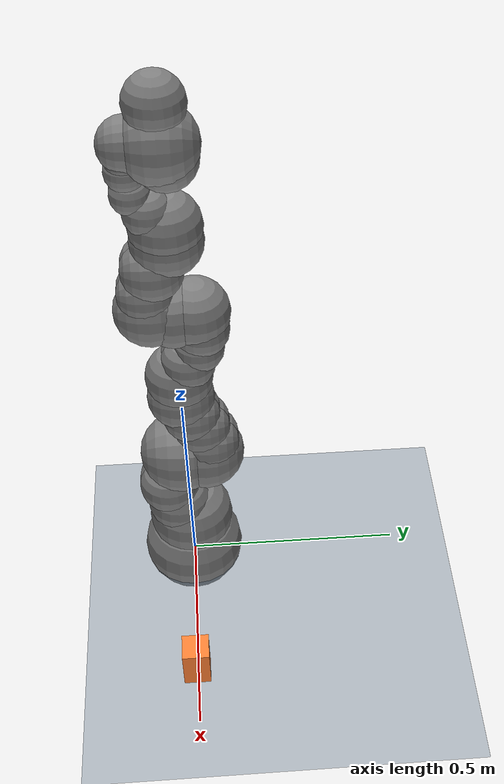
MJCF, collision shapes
<mujoco model="iiwa14 with simple gripper">
  <include file="iiwa14.xml"/>

  <statistic center="0.2 0 0.2" extent="1.0"/>

  <visual>
    <headlight diffuse="0.6 0.6 0.6" ambient="0.3 0.3 0.3" specular="0 0 0"/>
    <rgba haze="0.15 0.25 0.35 1"/>
    <global azimuth="-120" elevation="-20"/>
  </visual>

  <asset>
    <texture type="skybox" builtin="gradient" rgb1="0.3 0.5 0.7" rgb2="0 0 0" width="512" height="3072"/>
    <texture type="2d" name="groundplane" builtin="checker" mark="edge" rgb1="0.2 0.3 0.4" rgb2="0.1 0.2 0.3"
      markrgb="0.8 0.8 0.8" width="300" height="300"/>
    <material name="groundplane" texture="groundplane" texuniform="true" texrepeat="5 5" reflectance="0.2"/>
    <material name="gripper_material" rgba="0.5 0.5 0.5 1"/>
  </asset>

  <default>
    <default class="gripper_joint">
      <joint type="slide" axis="0 1 0" range="-0.02 0.02" damping="50"/>
      <general ctrlrange="-1 1" gainprm="500"/>
    </default>
  </default>

  <worldbody>
    <light pos="0 0 1.5" dir="0 0 -1" directional="true"/>
    <geom name="floor" size="0 0 0.05" type="plane" material="groundplane"/>

    <!-- Target box to grasp -->
    <body name="target_box" pos="0.4 0 0.1">
      <freejoint/>
      <geom name="target_box_geom" type="box" size="0.03 0.03 0.05" rgba="1 0.5 0.2 1" mass="0.2"/>
    </body>

    <!-- Simple gripper floating near robot end-effector -->
    <body name="gripper_base" pos="0 0 0.8">
      <geom name="gripper_palm" type="box" size="0.02 0.02 0.01" material="gripper_material"/>

      <body name="left_finger" pos="0 0.02 0.02">
        <joint name="left_finger_joint" class="gripper_joint"/>
        <geom name="left_finger_geom" type="box" size="0.005 0.015 0.02" material="gripper_material"/>
      </body>

      <body name="right_finger" pos="0 -0.02 0.02">
        <joint name="right_finger_joint" class="gripper_joint"/>
        <geom name="right_finger_geom" type="box" size="0.005 0.015 0.02" material="gripper_material"/>
      </body>
    </body>
  </worldbody>

  <actuator>
    <general name="left_finger_actuator" joint="left_finger_joint" class="gripper_joint"/>
    <general name="right_finger_actuator" joint="right_finger_joint" class="gripper_joint"/>
  </actuator>

  <keyframe>
    <key name="home_with_gripper" qpos="0 0.785398 0 -1.5708 0 0 0 0 0 0 0 0 0 0 0 0" ctrl="0 0.785398 0 -1.5708 0 0 0 0 0"/>
  </keyframe>
</mujoco>

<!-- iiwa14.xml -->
<mujoco model="iiwa14">
  <compiler angle="radian" meshdir="assets" autolimits="true"/>

  <option integrator="implicitfast"/>

  <default>
    <default class="iiwa">
      <material specular="0.5" shininess="0.25"/>
      <joint axis="0 0 1"/>
      <general gaintype="fixed" biastype="affine" gainprm="2000" biasprm="0 -2000 -200"/>
      <default class="joint1">
        <joint range="-2.96706 2.96706"/>
        <general ctrlrange="-2.96706 2.96706"/>
        <default class="joint2">
          <joint range="-2.0944 2.0944"/>
          <general ctrlrange="-2.0944 2.0944"/>
        </default>
      </default>
      <default class="joint3">
        <joint range="-3.05433 3.05433"/>
        <general ctrlrange="-3.05433 3.05433"/>
      </default>
      <default class="visual">
        <geom type="mesh" contype="0" conaffinity="0" group="2" material="gray"/>
      </default>
      <default class="collision">
        <geom group="3"/>
      </default>
      <site size="0.001" rgba="1 0 0 1" group="4"/>
    </default>
  </default>

  <asset>
    <material class="iiwa" name="gray" rgba="0.4 0.4 0.4 1"/>
    <material class="iiwa" name="light_gray" rgba="0.6 0.6 0.6 1"/>
    <material class="iiwa" name="black" rgba="0 0 0 1"/>
    <material class="iiwa" name="orange" rgba="1 0.423529 0.0392157 1"/>

    <mesh file="link_0.obj"/>
    <mesh file="link_1.obj"/>
    <mesh file="link_2_orange.obj"/>
    <mesh file="link_2_grey.obj"/>
    <mesh file="link_3.obj"/>
    <mesh file="band.obj"/>
    <mesh file="kuka.obj"/>
    <mesh file="link_4_orange.obj"/>
    <mesh file="link_4_grey.obj"/>
    <mesh file="link_5.obj"/>
    <mesh file="link_6_orange.obj"/>
    <mesh file="link_6_grey.obj"/>
    <mesh file="link_7.obj"/>
  </asset>

  <worldbody>
    <light name="top" pos="0 0 2" mode="trackcom"/>
    <body name="base" childclass="iiwa">
      <inertial mass="5" pos="-0.1 0 0.07" diaginertia="0.05 0.06 0.03"/>
      <freejoint/>
      <geom class="visual" mesh="link_0"/>
      <geom class="collision" size="0.12" pos="0 0 0.03"/>
      <geom class="collision" size="0.08" pos="-0.08 0 0.103"/>
      <geom class="collision" size="0.08" pos="-0.08 0 0.04"/>
      <geom class="collision" size="0.1" pos="0 0 0.14"/>
      <body name="link1" pos="0 0 0.1575">
        <inertial mass="5.76" pos="0 -0.03 0.12" diaginertia="0.0333 0.033 0.0123"/>
        <joint name="joint1" class="joint1"/>
        <geom class="visual" mesh="link_1"/>
        <geom class="collision" size="0.08" pos="0 0 -0.0005"/>
        <geom class="collision" size="0.075" pos="0.01 -0.025 0.0425"/>
        <geom class="collision" size="0.075" pos="-0.01 -0.025 0.0425"/>
        <geom class="collision" size="0.07" pos="0.01 -0.045 0.1025"/>
        <geom class="collision" size="0.07" pos="-0.01 -0.045 0.1025"/>
        <body name="link2" pos="0 0 0.2025" quat="0 0 1 1">
          <inertial mass="6.35" pos="0.0003 0.059 0.042" diaginertia="0.0305 0.0304 0.011" quat="0 0 1 1"/>
          <joint name="joint2" class="joint2"/>
          <geom class="visual" material="orange" mesh="link_2_orange"/>
          <geom class="visual" mesh="link_2_grey"/>
          <geom class="collision" size="0.095" pos="0 0 -0.01"/>
          <geom class="collision" size="0.09" pos="0 0 0.045"/>
          <geom class="collision" size="0.07" pos="-0.01 0.04 0.054"/>
          <geom class="collision" size="0.065" pos="-0.01 0.09 0.04"/>
          <geom class="collision" size="0.065" pos="-0.01 0.13 0.02"/>
          <geom class="collision" size="0.07" pos="0.01 0.04 0.054"/>
          <geom class="collision" size="0.065" pos="0.01 0.09 0.04"/>
          <geom class="collision" size="0.065" pos="0.01 0.13 0.02"/>
          <geom class="collision" size="0.075" pos="0 0.18 0"/>
          <body name="link3" pos="0 0.2045 0" quat="0 0 1 1">
            <inertial mass="3.5" pos="0 0.03 0.13" diaginertia="0.025 0.0238 0.0076"/>
            <joint name="joint3" class="joint1"/>
            <geom class="visual" mesh="link_3"/>
            <geom class="visual" material="light_gray" mesh="band"/>
            <geom class="visual" material="black" mesh="kuka"/>
            <geom class="collision" size="0.075" pos="0 0 0.0355"/>
            <geom class="collision" size="0.06" pos="0.01 0.023 0.0855"/>
            <geom class="collision" size="0.055" pos="0.01 0.048 0.1255"/>
            <geom class="collision" size="0.06" pos="0.01 0.056 0.1755"/>
            <geom class="collision" size="0.06" pos="-0.01 0.023 0.0855"/>
            <geom class="collision" size="0.055" pos="-0.01 0.048 0.1255"/>
            <geom class="collision" size="0.06" pos="-0.01 0.056 0.1755"/>
            <geom class="collision" size="0.075" pos="0 0.045 0.2155"/>
            <geom class="collision" size="0.075" pos="0 0 0.2155"/>
            <body name="link4" pos="0 0 0.2155" quat="1 1 0 0">
              <inertial mass="3.5" pos="0 0.067 0.034" diaginertia="0.017 0.0164 0.006" quat="1 1 0 0"/>
              <joint name="joint4" class="joint2"/>
              <geom class="visual" material="orange" mesh="link_4_orange"/>
              <geom class="visual" mesh="link_4_grey"/>
              <geom class="collision" size="0.078" pos="0 0.01 0.046"/>
              <geom class="collision" size="0.06" pos="0.01 0.06 0.052"/>
              <geom class="collision" size="0.065" pos="0.01 0.12 0.034"/>
              <geom class="collision" size="0.06" pos="-0.01 0.06 0.052"/>
              <geom class="collision" size="0.065" pos="-0.01 0.12 0.034"/>
              <geom class="collision" size="0.075" pos="0 0.184 0"/>
              <body name="link5" pos="0 0.1845 0" quat="0 0 1 1">
                <inertial mass="3.5" pos="0.0001 0.021 0.076" diaginertia="0.01 0.0087 0.00449"/>
                <joint name="joint5" class="joint1"/>
                <geom class="visual" mesh="link_5"/>
                <geom class="visual" material="light_gray" mesh="band"/>
                <geom class="visual" material="black" mesh="kuka"/>
                <geom class="collision" size="0.075" pos="0 0 0.0335"/>
                <geom class="collision" size="0.05" pos="-0.012 0.031 0.0755"/>
                <geom class="collision" size="0.05" pos="0.012 0.031 0.0755"/>
                <geom class="collision" size="0.04" pos="-0.012 0.06 0.1155"/>
                <geom class="collision" size="0.04" pos="0.012 0.06 0.1155"/>
                <geom class="collision" size="0.04" pos="-0.01 0.065 0.1655"/>
                <geom class="collision" size="0.04" pos="0.01 0.065 0.1655"/>
                <geom class="collision" size="0.035" pos="-0.012 0.065 0.1855"/>
                <geom class="collision" size="0.035" pos="0.012 0.065 0.1855"/>
                <body name="link6" pos="0 0 0.2155" quat="1 1 0 0">
                  <inertial mass="1.8" pos="0 0.0006 0.0004" diaginertia="0.0049 0.0047 0.0036" quat="1 1 0 0"/>
                  <joint name="joint6" class="joint2"/>
                  <geom class="visual" material="orange" mesh="link_6_orange"/>
                  <geom class="visual" mesh="link_6_grey"/>
                  <geom class="collision" size="0.055" pos="0 0 -0.059"/>
                  <geom class="collision" size="0.065" pos="0 -0.03 0.011"/>
                  <geom class="collision" size="0.08"/>
                  <body name="link7" pos="0 0.081 0" quat="0 0 1 1">
                    <inertial mass="1.2" pos="0 0 0.02" diaginertia="0.001 0.001 0.001"/>
                    <joint name="joint7" class="joint3"/>
                    <geom class="visual" mesh="link_7"/>
                    <geom class="collision" size="0.06" pos="0 0 0.001"/>
                    <site pos="0 0 0.045" name="attachment_site"/>

                  </body>
                </body>
              </body>
            </body>
          </body>
        </body>
      </body>
    </body>
  </worldbody>

  <contact>
    <exclude body1="base" body2="link1"/>
    <exclude body1="base" body2="link2"/>
    <exclude body1="base" body2="link3"/>
    <exclude body1="link1" body2="link3"/>
    <exclude body1="link3" body2="link5"/>
    <exclude body1="link4" body2="link7"/>
    <exclude body1="link5" body2="link7"/>
  </contact>

  <actuator>
    <general name="actuator1" joint="joint1" class="joint1"/>
    <general name="actuator2" joint="joint2" class="joint2"/>
    <general name="actuator3" joint="joint3" class="joint1"/>
    <general name="actuator4" joint="joint4" class="joint2"/>
    <general name="actuator5" joint="joint5" class="joint1"/>
    <general name="actuator6" joint="joint6" class="joint2"/>
    <general name="actuator7" joint="joint7" class="joint3"/>
  </actuator>

  <keyframe>
    <key name="home" qpos="0 0.785398 0 -1.5708 0 0 0" ctrl="0 0.785398 0 -1.5708 0 0 0"/>
  </keyframe>
</mujoco>
